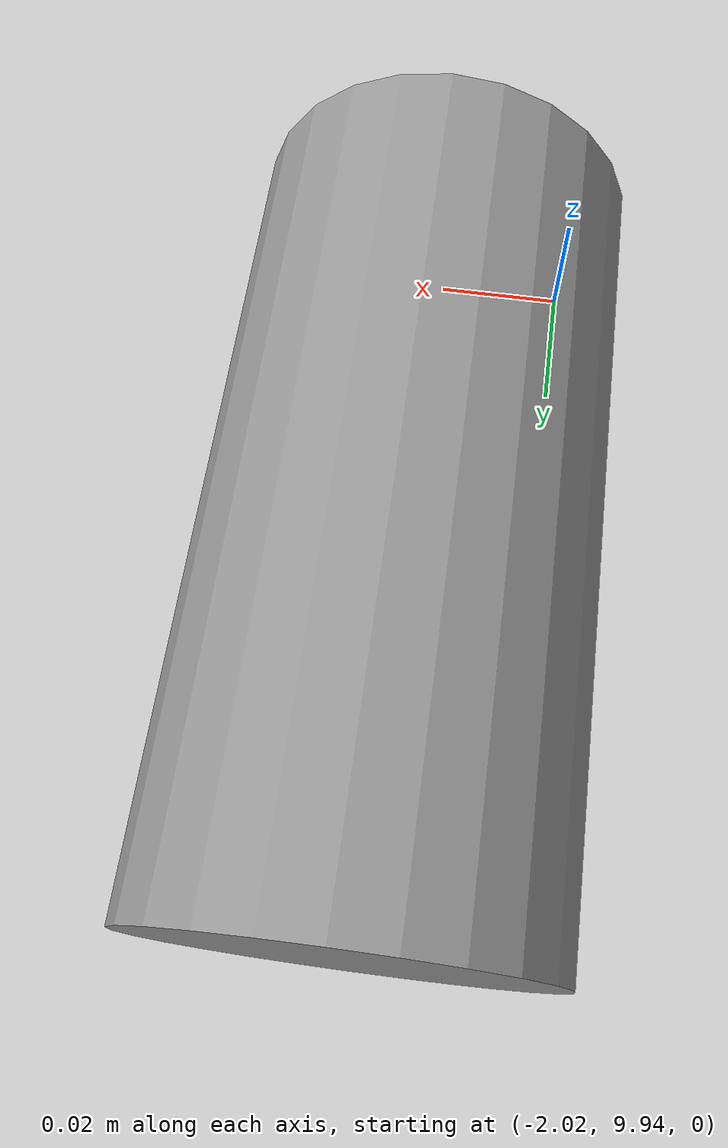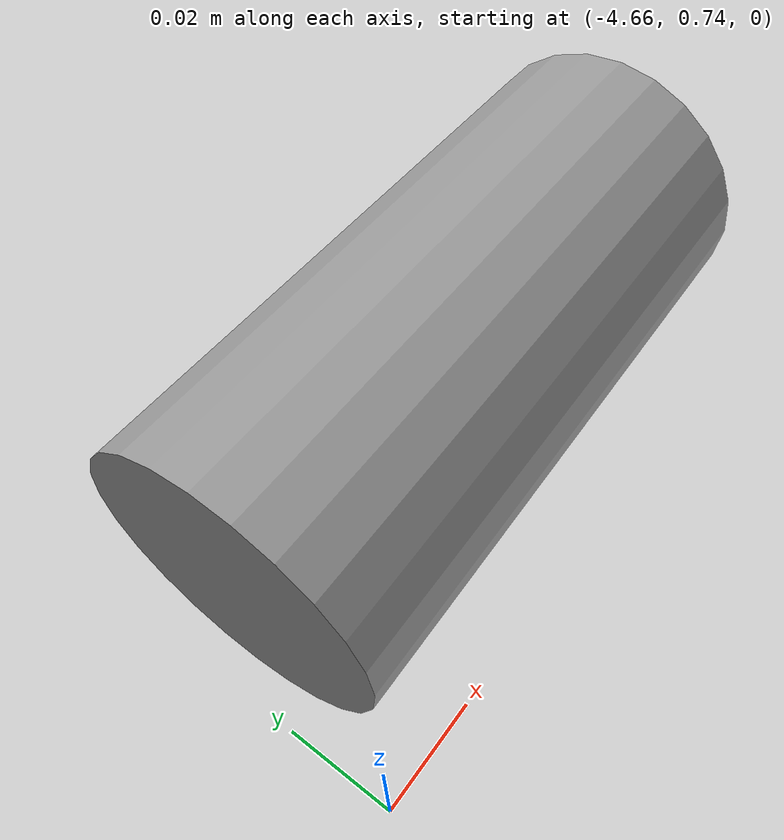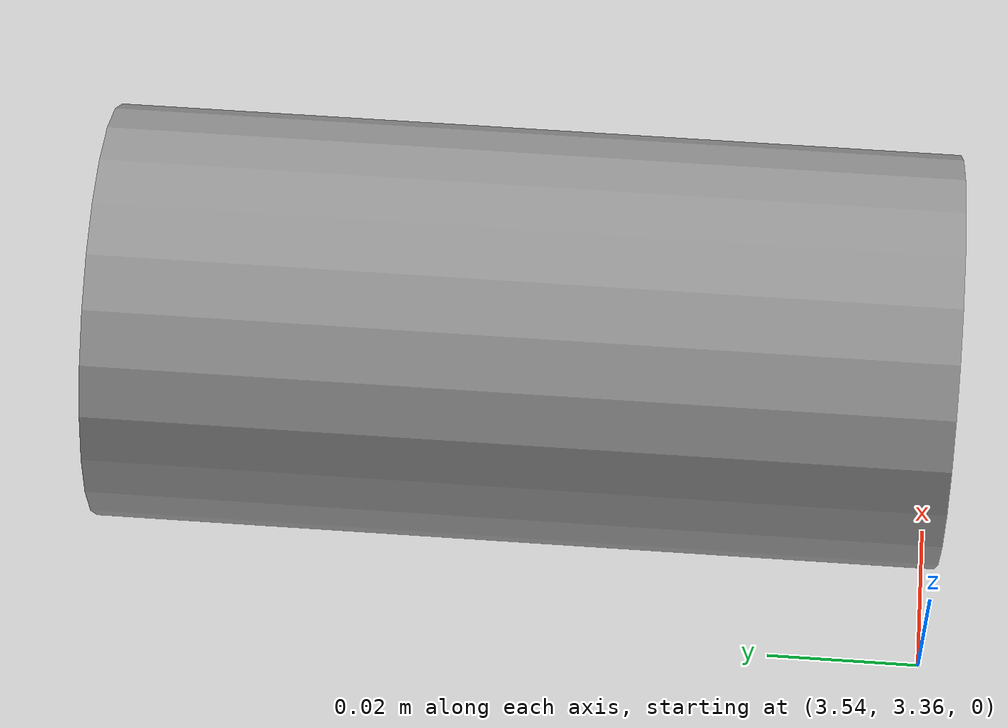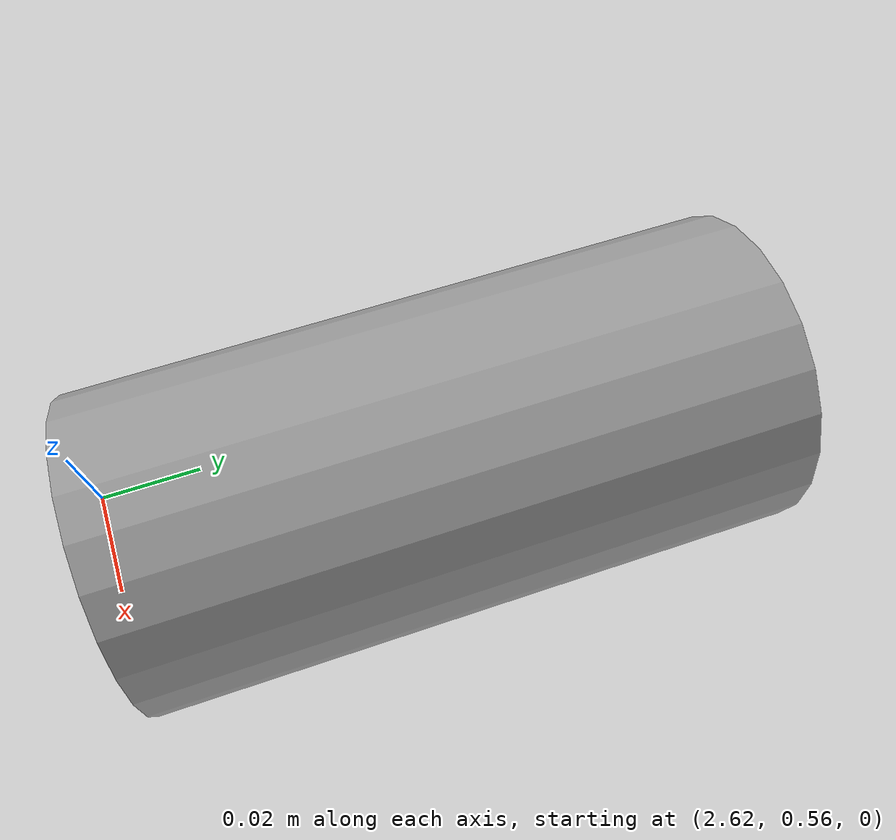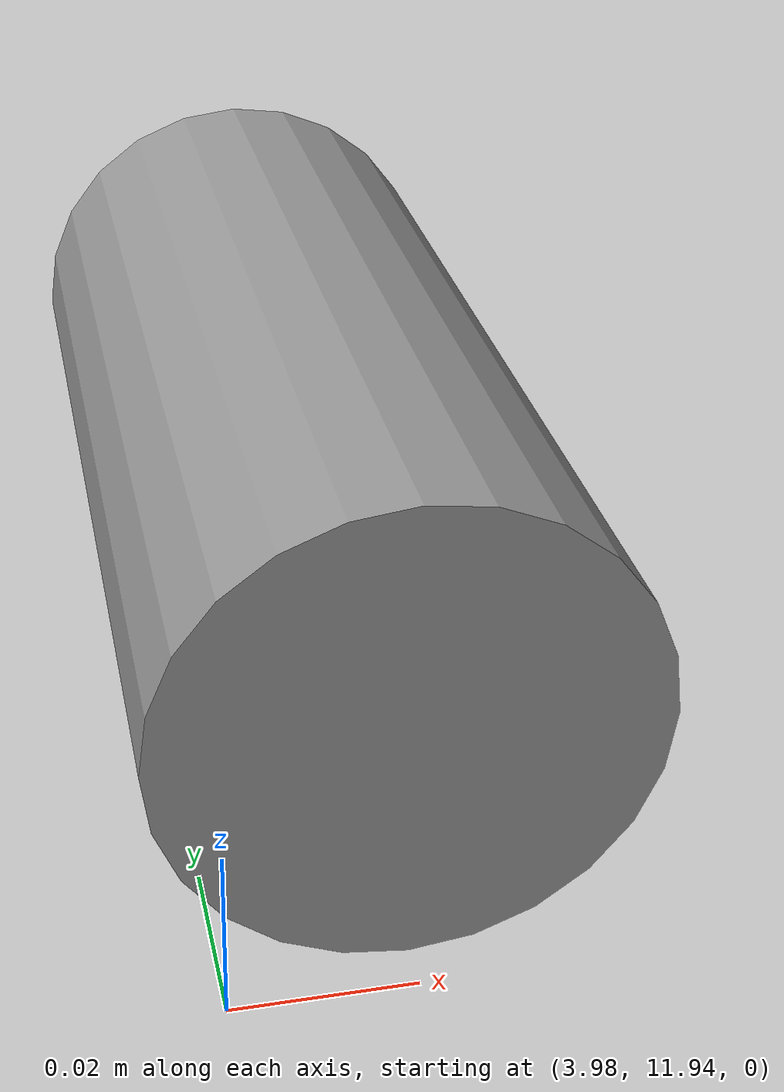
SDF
<sdf version="1.7">
 <world name="default">
  <light name="sun" type="directional">
   <pose>0 0 10 0 -0 0</pose>
   <diffuse>0.8 0.8 0.8 1</diffuse>
   <specular>0.2 0.2 0.2 1</specular>
   <attenuation>
    <range>1000</range>
    <constant>0.9</constant>
    <linear>0.01</linear>
    <quadratic>0.001</quadratic>
   </attenuation>
   <direction>-0.5 0.1 -0.9</direction>
   <spot><inner_angle>0</inner_angle><outer_angle>0</outer_angle><falloff>0</falloff></spot>
  </light>
  <plugin name="ros_interface_plugin" filename="librotors_gazebo_ros_interface_plugin.so"/>
  <spherical_coordinates>
   <surface_model>EARTH_WGS84</surface_model>
   <latitude_deg>47.3667</latitude_deg>
   <longitude_deg>8.55</longitude_deg>
   <elevation>500</elevation>
   <heading_deg>0</heading_deg>
  </spherical_coordinates>
  <physics type="ode">
   <ode>
    <solver>
     <type>quick</type>
     <iters>1000</iters>
     <sor>1.3</sor>
     <use_dynamic_moi_rescaling>0</use_dynamic_moi_rescaling>
    </solver>
    <constraints>
     <cfm>0</cfm>
     <erp>0.2</erp>
     <contact_max_correcting_vel>100</contact_max_correcting_vel>
     <contact_surface_layer>0.001</contact_surface_layer>
    </constraints>
   </ode>
   <max_step_size>0.01</max_step_size>
   <real_time_factor>1</real_time_factor>
   <real_time_update_rate>100</real_time_update_rate>
  </physics>
  <gravity>0 0 -9.8</gravity>
  <magnetic_field>6e-06 2.3e-05 -4.2e-05</magnetic_field>
  <atmosphere type="adiabatic"/>
  <scene><ambient>0.4 0.4 0.4 1</ambient><background>0.7 0.7 0.7 1</background><shadows>1</shadows></scene>
  <model name="airport_ground_plane">
   <static>1</static>
   <link name="link">
    <collision name="collision">
     <geometry><plane><normal>0 0 1</normal><size>40 80</size></plane></geometry>
     <surface><friction><ode><mu>100</mu><mu2>50</mu2></ode></friction></surface>
    </collision>
    <visual name="visual">
     <cast_shadows>0</cast_shadows>
     <geometry><plane><normal>0 0 1</normal><size>40 80</size></plane></geometry>
     <material>
      <script>
       <uri>model://airport_ground_plane/materials/scripts</uri>
       <uri>model://airport_ground_plane/materials/textures/</uri>
       <name>AirportGroundPlane/Image</name>
      </script>
     </material>
    </visual>
   </link>
   <pose>1.76622 31.1891 0 0 -0 0</pose>
  </model>
  <model name="unit_cylinder">
   <pose>2.6427 0.621636 0.027119 -1.5708 0 0</pose>
   <link name="link">
    <inertial>
     <mass>1</mass>
     <inertia><ixx>0.145833</ixx><ixy>0</ixy><ixz>0</ixz><iyy>0.145833</iyy><iyz>0</iyz><izz>0.125</izz></inertia>
    </inertial>
    <collision name="collision">
     <geometry><cylinder><radius>0.0271191</radius><length>0.110337</length></cylinder></geometry>
    </collision>
    <visual name="visual">
     <geometry><cylinder><radius>0.0271191</radius><length>0.110337</length></cylinder></geometry>
     <material>
      <script><name>Gazebo/Grey</name><uri>file://media/materials/scripts/gazebo.material</uri></script>
     </material>
    </visual>
   </link>
  </model>
  <model name="unit_cylinder_clone">
   <pose>-4.59934 0.773829 0.027119 -1.5708 -0.000273 -1.55242</pose>
   <link name="link">
    <inertial>
     <mass>1</mass>
     <inertia><ixx>0.145833</ixx><ixy>0</ixy><ixz>0</ixz><iyy>0.145833</iyy><iyz>0</iyz><izz>0.125</izz></inertia>
    </inertial>
    <collision name="collision">
     <geometry><cylinder><radius>0.0271189</radius><length>0.110337</length></cylinder></geometry>
    </collision>
    <visual name="visual">
     <geometry><cylinder><radius>0.0271189</radius><length>0.110337</length></cylinder></geometry>
     <material>
      <script><name>Gazebo/Grey</name><uri>file://media/materials/scripts/gazebo.material</uri></script>
     </material>
    </visual>
   </link>
  </model>
  <model name="unit_cylinder_clone_0">
   <pose>0.566941 4.40072 0.027119 -1.5708 0 0</pose>
   <link name="link">
    <inertial>
     <mass>1</mass>
     <inertia><ixx>0.145833</ixx><ixy>0</ixy><ixz>0</ixz><iyy>0.145833</iyy><iyz>0</iyz><izz>0.125</izz></inertia>
    </inertial>
    <collision name="collision">
     <geometry><cylinder><radius>0.0271189</radius><length>0.110337</length></cylinder></geometry>
    </collision>
    <visual name="visual">
     <geometry><cylinder><radius>0.0271189</radius><length>0.110337</length></cylinder></geometry>
     <material>
      <script><name>Gazebo/Grey</name><uri>file://media/materials/scripts/gazebo.material</uri></script>
     </material>
    </visual>
   </link>
  </model>
  <model name="unit_cylinder_clone_1">
   <pose>2 8 0.027119 -1.5708 0 0</pose>
   <link name="link">
    <inertial>
     <mass>1</mass>
     <inertia><ixx>0.145833</ixx><ixy>0</ixy><ixz>0</ixz><iyy>0.145833</iyy><iyz>0</iyz><izz>0.125</izz></inertia>
    </inertial>
    <collision name="collision">
     <geometry><cylinder><radius>0.0271189</radius><length>0.110337</length></cylinder></geometry>
    </collision>
    <visual name="visual">
     <geometry><cylinder><radius>0.0271189</radius><length>0.110337</length></cylinder></geometry>
     <material>
      <script><name>Gazebo/Grey</name><uri>file://media/materials/scripts/gazebo.material</uri></script>
     </material>
    </visual>
   </link>
  </model>
  <model name="unit_cylinder_clone_2">
   <pose>-2 10 0.027119 -1.5708 0 0</pose>
   <link name="link">
    <inertial>
     <mass>1</mass>
     <inertia><ixx>0.145833</ixx><ixy>0</ixy><ixz>0</ixz><iyy>0.145833</iyy><iyz>0</iyz><izz>0.125</izz></inertia>
    </inertial>
    <collision name="collision">
     <geometry><cylinder><radius>0.0271189</radius><length>0.110337</length></cylinder></geometry>
    </collision>
    <visual name="visual">
     <geometry><cylinder><radius>0.0271189</radius><length>0.110337</length></cylinder></geometry>
     <material>
      <script><name>Gazebo/Grey</name><uri>file://media/materials/scripts/gazebo.material</uri></script>
     </material>
    </visual>
   </link>
  </model>
  <model name="unit_cylinder_clone_3">
   <pose>4 12 0.027119 -1.5708 0 0</pose>
   <link name="link">
    <inertial>
     <mass>1</mass>
     <inertia><ixx>0.145833</ixx><ixy>0</ixy><ixz>0</ixz><iyy>0.145833</iyy><iyz>0</iyz><izz>0.125</izz></inertia>
    </inertial>
    <collision name="collision">
     <geometry><cylinder><radius>0.0271189</radius><length>0.110337</length></cylinder></geometry>
    </collision>
    <visual name="visual">
     <geometry><cylinder><radius>0.0271189</radius><length>0.110337</length></cylinder></geometry>
     <material>
      <script><name>Gazebo/Grey</name><uri>file://media/materials/scripts/gazebo.material</uri></script>
     </material>
    </visual>
   </link>
  </model>
  <model name="unit_cylinder_clone_4">
   <pose>-3.54449 13 0.027119 -1.5708 0 0</pose>
   <link name="link">
    <inertial>
     <mass>1</mass>
     <inertia><ixx>0.145833</ixx><ixy>0</ixy><ixz>0</ixz><iyy>0.145833</iyy><iyz>0</iyz><izz>0.125</izz></inertia>
    </inertial>
    <collision name="collision">
     <geometry><cylinder><radius>0.0271189</radius><length>0.110337</length></cylinder></geometry>
    </collision>
    <visual name="visual">
     <geometry><cylinder><radius>0.0271189</radius><length>0.110337</length></cylinder></geometry>
     <material>
      <script><name>Gazebo/Grey</name><uri>file://media/materials/scripts/gazebo.material</uri></script>
     </material>
    </visual>
   </link>
  </model>
  <model name="unit_cylinder_clone_5">
   <pose>3.57116 3.41426 0.027104 -1.57107 0 0</pose>
   <link name="link">
    <inertial>
     <mass>1</mass>
     <inertia><ixx>0.145833</ixx><ixy>0</ixy><ixz>0</ixz><iyy>0.145833</iyy><iyz>0</iyz><izz>0.125</izz></inertia>
    </inertial>
    <collision name="collision">
     <geometry><cylinder><radius>0.0271189</radius><length>0.110337</length></cylinder></geometry>
    </collision>
    <visual name="visual">
     <geometry><cylinder><radius>0.0271189</radius><length>0.110337</length></cylinder></geometry>
     <material>
      <script><name>Gazebo/Grey</name><uri>file://media/materials/scripts/gazebo.material</uri></script>
     </material>
    </visual>
   </link>
  </model>
 </world>
</sdf>
